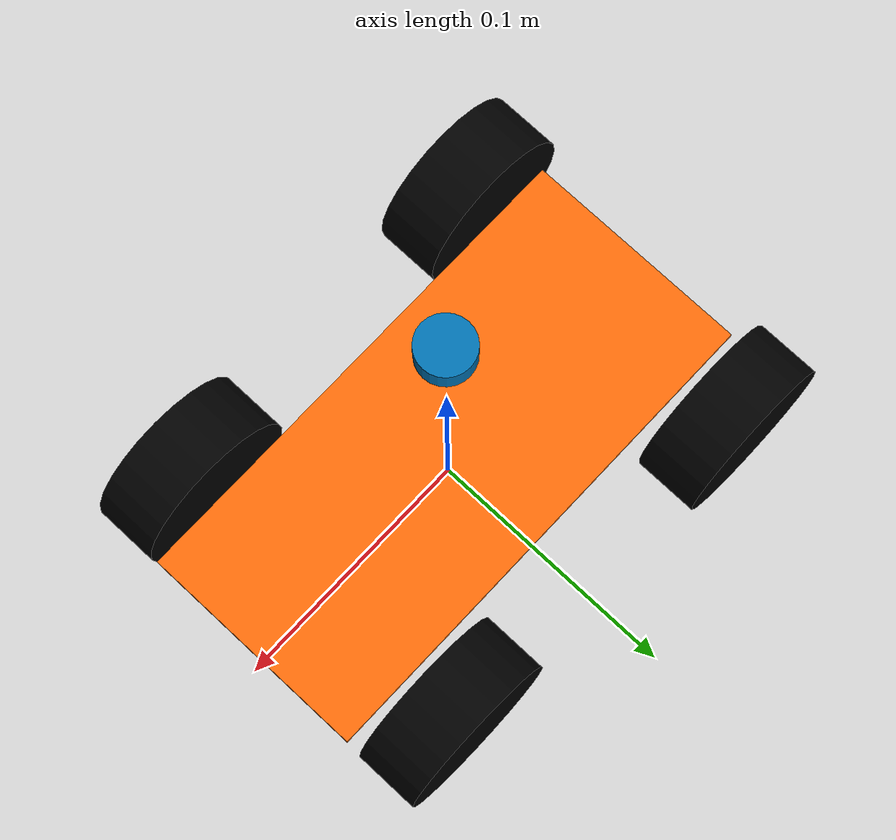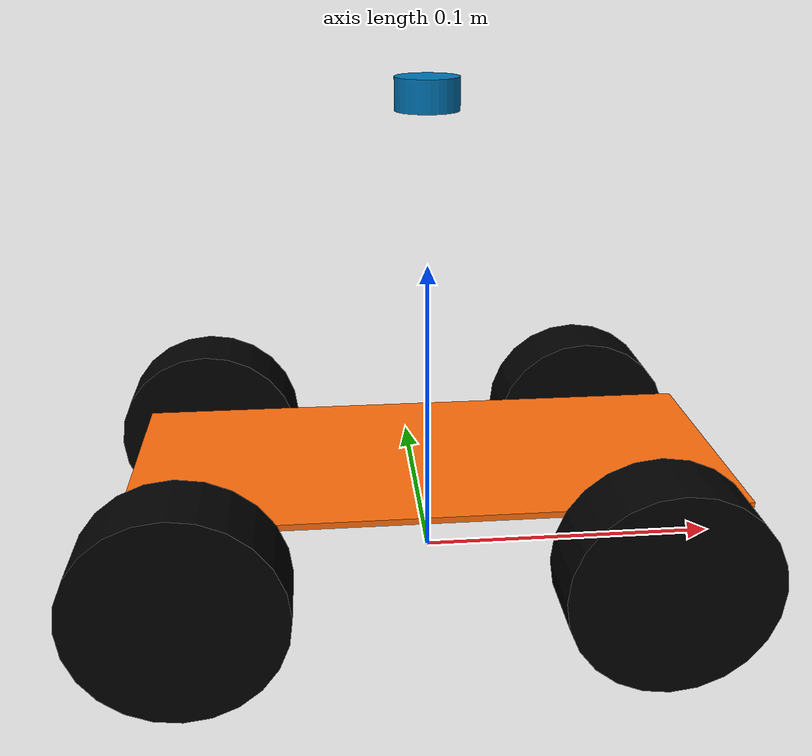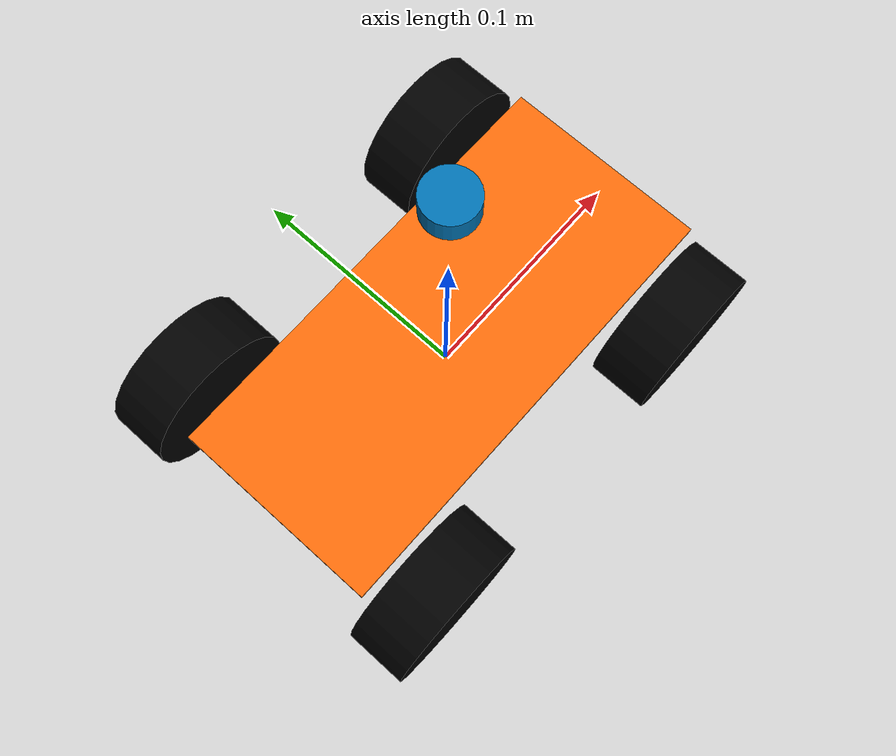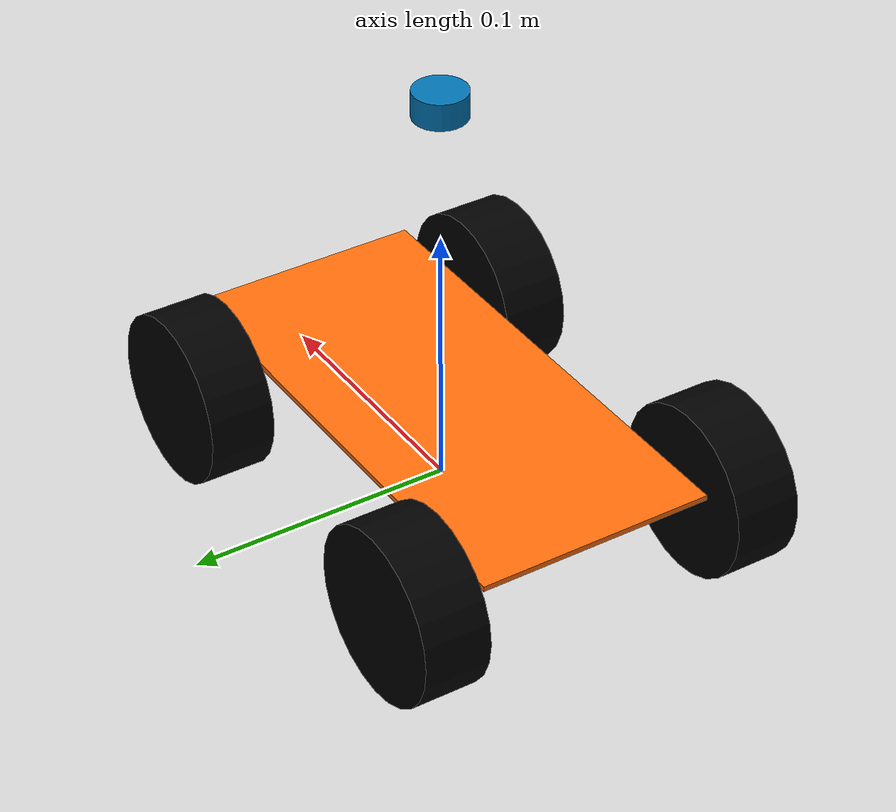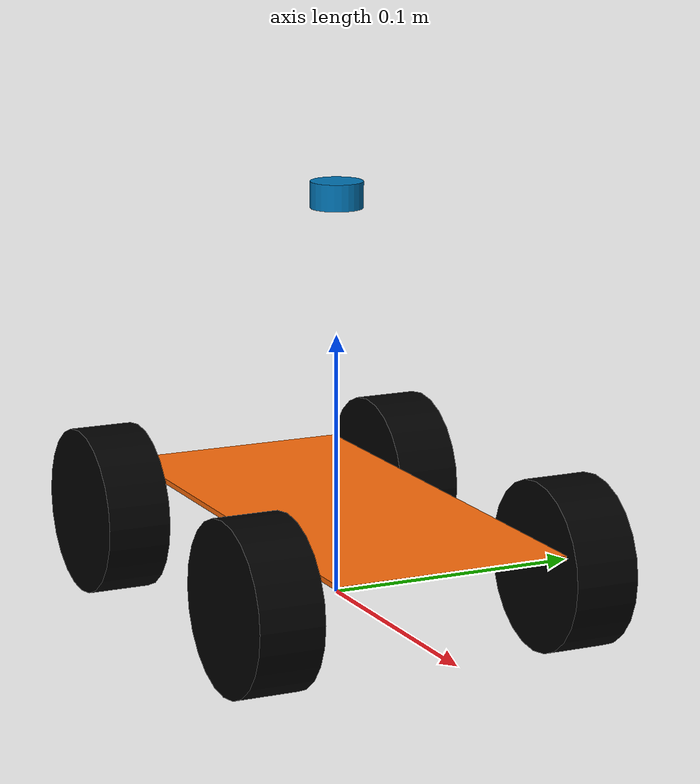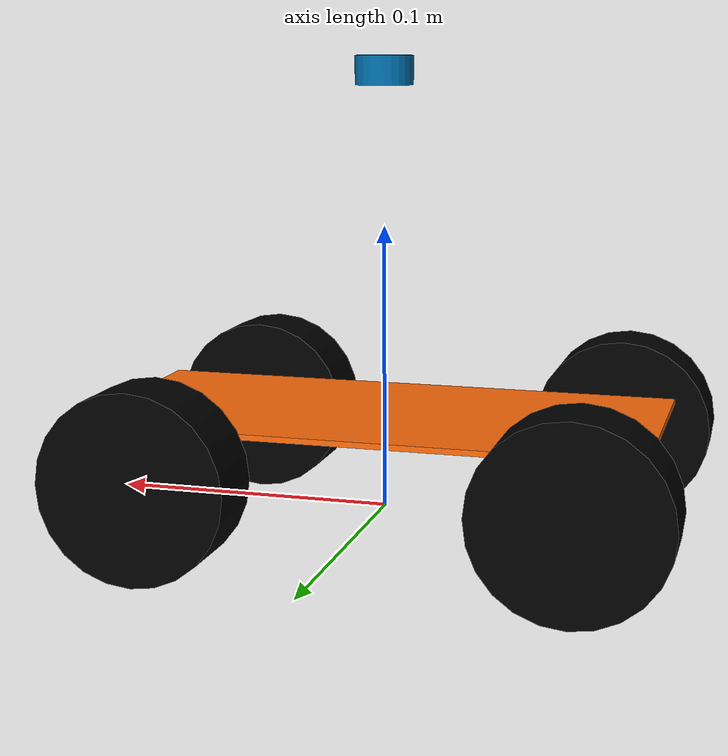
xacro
<?xml version="1.0"?>
<!-- 4 Wheel Robot with differential drive -->
<robot xmlns:xacro="http://www.ros.org/wiki/xacro" name="carlikebot_robot">

  <xacro:arg name="use_mock_hardware" default="false" />
  <xacro:arg name="mock_sensor_commands" default="false" />
  <xacro:arg name="use_gazebo_classic" default="false" />
  <xacro:arg name="use_ekf" default="true" />

  <!-- Import carlikebot description -->
  <xacro:include filename="carlikebot/carlikebot.description.urdf.xacro" />

   <!-- Import Rviz colors -->
  <xacro:include filename="carlikebot/carlikebot.materials.xacro" />

  <!-- Import carlikebot ros2_control description -->
  <xacro:include filename="carlikebot/carlikebot.ros2_control.xacro" />

  <xacro:carlikebot />

  <xacro:carlikebot_ros2_control
    name="CarlikeBot"
    use_mock_hardware="$(arg use_mock_hardware)"
    mock_sensor_commands="$(arg mock_sensor_commands)"
    use_gazebo_classic="$(arg use_gazebo_classic)" />

  <xacro:if value="$(arg use_gazebo_classic)">
    <!-- Import Gazebo Classic definitions + plugin -->
    <xacro:include filename="carlikebot/carlikebot.gazebo.xacro" />
    <xacro:carlikebot_gazebo
      use_ekf="$(arg use_ekf)" />
  </xacro:if>

</robot>

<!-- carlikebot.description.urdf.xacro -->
<robot xmlns:xacro="http://www.ros.org/wiki/xacro">

  <xacro:macro name="carlikebot">

    <!-- Constants for robot dimensions -->
    <xacro:property name="PI" value="3.1415926535897931"/>
    <xacro:property name="base_mass" value="0.433" /> <!-- arbitrary value for base mass, I think in Kg -->
    <xacro:property name="base_width" value="0.09" />
    <xacro:property name="base_length" value="0.195" />
    <xacro:property name="base_height" value="0.002" />
    <xacro:property name="wheelbase" value="0.145" />
    <xacro:property name="wheel_mass" value="0.024" /> <!-- arbitrary value for wheel mass, I think in Kg -->
    <xacro:property name="wheel_len" value="0.025" />
    <xacro:property name="wheel_radius" value="0.0325" />
    <xacro:property name="wheel_ygap" value="0.005"/>
    <xacro:property name="wheel_zoff" value="0.0125"/>
    <xacro:property name="wheel_back_xoff" value="0.0775"/>
    <xacro:property name="wheel_front_xoff" value="0.065"/>

    <!-- Base Link -->
    <link name="base_link" />

    <!--Base footprint link (it's for slam)-->
    <link name="base_footprint" />

    <joint name="base_footprint_joint" type="fixed">
      <parent link="base_link"/>
      <child link="base_footprint"/>
      <origin xyz="0 0 0" rpy="0 0 0"/>
    </joint>

    <!-- Chassis -->

    <link name="chassis_link">

      <visual>
        <origin xyz="0 0 0" rpy="0 0 0"/>
        <geometry>
          <box size="${base_length} ${base_width} ${base_height}"/>
        </geometry>
        <material name="orange"/>
      </visual>

      <inertial>
        <origin xyz="0 0 0" rpy="0 0 0"/>
        <mass value="${base_mass}"/>
          <inertia
            ixx="0.000292419" ixy="0.0" ixz="0.0"
            iyy="0.001372213" iyz="0.0"
            izz="0.00166434375"/>
      </inertial>
    </link>

    <joint name="chassis_joint" type="fixed">
      <parent link="base_link"/>
      <child link="chassis_link"/>
      <origin xyz="0 0 ${base_height/2 + wheel_radius}" rpy="0 0 0"/>
      <axis xyz="0 0 1"/>
      <dynamics damping="0.2"/>
    </joint>

    <!-- IMU sensor -->
    <link name="imu_link">
      <visual>
        <origin xyz="0 0 0" rpy="0 0 0"/>
        <geometry>
          <box size="0.0000001 0.0000001 0.0000001"/>
        </geometry>
        <material name="invisible"/>
      </visual>

      <inertial>
        <origin xyz="0 0 0" rpy="0 0 0"/>
        <mass value="0.0000001"/>
          <inertia
            ixx="0.0000001" ixy="0.0" ixz="0.0"
            iyy="0.0000001" iyz="0.0"
            izz="0.0000001"/>
      </inertial>
    </link>

    <joint name="imu_joint" type="fixed">
      <parent link="chassis_link"/>
      <child link="imu_link"/>
      <origin xyz="0 0 0" rpy="0 0 0"/>
    </joint>

    <!-- Ultrasonic sensor -->

    <!-- Camera sensor -->

    <!-- Lidar sensor -->
    <link name="lidar_link">
      <inertial>
        <origin xyz="0 0 0" rpy="0 0 0"/>
        <mass value="0.125"/>
        <inertia ixx="0.000001"  ixy="0"  ixz="0" iyy="0.000001" iyz="0" izz="0.000001" />
      </inertial>

      <visual>
        <origin xyz="0 0 0" rpy="0 0 0"/>
        <geometry>
          <cylinder radius="0.01" length="0.01"/>
        </geometry>
      </visual>
    </link>

    <joint name="lidar_joint" type="fixed">
      <parent link="chassis_link"/>
      <child link="lidar_link"/>
      <origin xyz="0 0 0.12" rpy="0 0 0"/>
    </joint>

    <!-- front wheels -->

    <!-- virtual front wheel -->

    <!-- front right wheel -->

    <link name="front_right_wheel">

      <collision>
        <origin xyz="0 0 0" rpy="${PI/2} 0 ${PI/2}"/>
        <geometry>
          <cylinder length="${wheel_len}" radius="${wheel_radius}"/>
        </geometry>
      </collision>

      <visual>
        <origin xyz="0 0 0" rpy="${PI/2} 0 ${PI/2}"/>
        <geometry>
          <cylinder length="${wheel_len}" radius="${wheel_radius}"/>
        </geometry>
        <material name="black"/>
      </visual>

      <inertial>
        <origin xyz="0 0 0" rpy="${PI/2} 0 ${PI/2}"/>
        <mass value="${wheel_mass}"/>
        <inertia
          ixx="0.0000075875" ixy="0.0" ixz="0.0"
          iyy="0.0000075875" iyz="0.0"
          izz="0.000012675"/>
      </inertial>
    </link>

    <joint name="front_right_wheel_joint" type="continuous">
      <parent link="chassis_link" />
      <child link="front_right_wheel" />
      <origin xyz="${wheel_front_xoff} -${base_width/2+wheel_ygap+wheel_len/2} -${wheel_zoff}" rpy="0 0 ${PI/2}"/>
      <axis xyz="1 0 0"/>
      <limit effort="100.0" velocity="100.0"/>
    </joint>

    <!-- front left wheel -->

    <link name="front_left_wheel">
      <collision>
        <origin xyz="0 0 0" rpy="${PI/2} 0 ${PI/2}"/>
        <geometry>
          <cylinder length="${wheel_len}" radius="${wheel_radius}"/>
        </geometry>
      </collision>

      <visual>
        <origin xyz="0 0 0" rpy="${PI/2} 0 ${PI/2}"/>
        <geometry>
          <cylinder length="${wheel_len}" radius="${wheel_radius}"/>
        </geometry>
        <material name="black"/>
      </visual>

      <inertial>
        <origin xyz="0 0 0" rpy="${PI/2} 0 ${PI/2}"/>
        <mass value="${wheel_mass}"/>
        <inertia
          ixx="0.0000075875" ixy="0.0" ixz="0.0"
          iyy="0.0000075875" iyz="0.0"
          izz="0.000012675"/>
      </inertial>

    </link>

    <joint name="front_left_wheel_joint" type="continuous">
      <parent link="chassis_link" />
      <child link="front_left_wheel" />
      <origin xyz="${wheel_front_xoff} ${base_width/2+wheel_ygap+wheel_len/2} -${wheel_zoff}" rpy="0 0 ${PI/2}"/>
      <axis xyz="1 0 0"/>
      <limit effort="100.0" velocity="100.0"/>
    </joint>

    <!-- rear wheels -->

    <!-- virtual rear wheel -->

    <!-- rear right wheel -->

    <link name="rear_right_wheel">
      <collision>
        <origin xyz="0 0 0" rpy="${PI/2} 0 ${PI/2}"/>
        <geometry>
          <cylinder length="${wheel_len}" radius="${wheel_radius}"/>
        </geometry>
      </collision>

      <visual>
        <origin xyz="0 0 0" rpy="${PI/2} 0 ${PI/2}"/>
        <geometry>
          <cylinder length="${wheel_len}" radius="${wheel_radius}"/>
        </geometry>
        <material name="black"/>
      </visual>

      <inertial>
        <origin xyz="0 0 0" rpy="${PI/2} 0 ${PI/2}"/>
        <mass value="${wheel_mass}"/>
        <inertia
          ixx="0.0000075875" ixy="0.0" ixz="0.0"
          iyy="0.0000075875" iyz="0.0"
          izz="0.000012675"/>
      </inertial>

    </link>

    <joint name="rear_right_wheel_joint" type="continuous">
      <parent link="chassis_link"/>
      <child link="rear_right_wheel"/>
      <origin xyz="-${wheel_back_xoff} -${base_width/2+wheel_ygap+wheel_len/2} -${wheel_zoff}" rpy="0 0 ${PI/2}"/>
      <axis xyz="1 0 0"/>
      <limit effort="100.0" velocity="100.0"/>
      <mimic joint="front_right_wheel_joint" multiplier="1.0" offset="0.0"/>
    </joint>

    <!-- rear left wheel -->
    <link name="rear_left_wheel">
        <collision>
          <origin xyz="0 0 0" rpy="${PI/2} 0 ${PI/2}"/>
          <geometry>
            <cylinder length="${wheel_len}" radius="${wheel_radius}"/>
          </geometry>
        </collision>

        <visual>
          <origin xyz="0 0 0" rpy="${PI/2} 0 ${PI/2}"/>
          <geometry>
            <cylinder length="${wheel_len}" radius="${wheel_radius}"/>
          </geometry>
          <material name="black"/>
        </visual>

        <inertial>
          <origin xyz="0 0 0" rpy="${PI/2} 0 ${PI/2}"/>
          <mass value="${wheel_mass}"/>
          <inertia
            ixx="0.0000075875" ixy="0.0" ixz="0.0"
            iyy="0.0000075875" iyz="0.0"
            izz="0.000012675"/>
        </inertial>

    </link>

    <joint name="rear_left_wheel_joint" type="continuous">
      <parent link="chassis_link" />
      <child link="rear_left_wheel" />
      <origin xyz="-${wheel_back_xoff} ${base_width/2+wheel_ygap+wheel_len/2} -${wheel_zoff}" rpy="0 0 ${PI/2}"/>
      <axis xyz="1 0 0"/>
      <limit effort="100.0" velocity="100.0"/>
      <mimic joint="front_left_wheel_joint" multiplier="1.0" offset="0.0"/>
    </joint>

  </xacro:macro>

</robot>

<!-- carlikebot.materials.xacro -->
<!--
Copied from ROS1 example:
https://github.com/ros-simulation/gazebo_ros_demos/blob/kinetic-devel/rrbot_description/urdf/materials.xacro
-->
<robot>

  <material name="black">
    <color rgba="0.0 0.0 0.0 1.0"/>
  </material>

  <material name="blue">
    <color rgba="0.0 0.0 0.8 1.0"/>
  </material>

  <material name="green">
    <color rgba="0.0 0.8 0.0 1.0"/>
  </material>

  <material name="grey">
    <color rgba="0.2 0.2 0.2 1.0"/>
  </material>

  <material name="orange">
    <color rgba="${255/255} ${108/255} ${10/255} 1.0"/>
  </material>

  <material name="brown">
    <color rgba="${222/255} ${207/255} ${195/255} 1.0"/>
  </material>

  <material name="red">
    <color rgba="0.8 0.0 0.0 1.0"/>
  </material>

  <material name="white">
    <color rgba="1.0 1.0 1.0 1.0"/>
  </material>

  <material name="invisible">
    <color rgba="0.0 0.0 0.0 0.0"/>
  </material>

</robot>
